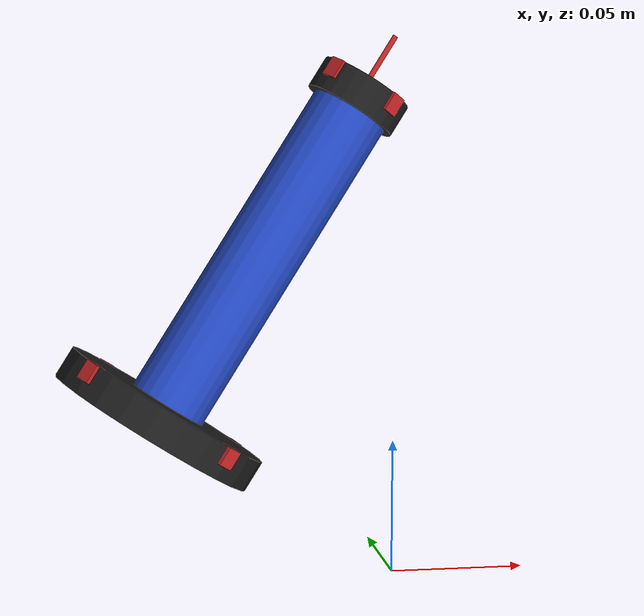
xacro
<?xml version="1.0" ?>
<robot xmlns:sensor="http://playerstage.sourceforge.net/gazebo/xmlschema/#sensor"
       xmlns:controller="http://playerstage.sourceforge.net/gazebo/xmlschema/#controller"
       xmlns:interface="http://playerstage.sourceforge.net/gazebo/xmlschema/#interface"
       xmlns:xacro="http://www.ros.org/wiki/xacro"
       name="gazebo_stylus_demo">

  <!-- instantiate the URDF model of our PhaseSpace "stylus" marker object. -->

  <xacro:include filename="$(find tams_phasespace)/urdf/phasespace_stylus.xacro" />

  <link name="world" />

  <xacro:phasespace_stylus  name="phasespace_stylus" />

  <joint name="stylus_fixed_joint" type="fixed">
    <parent link="world" />
    <child  link="phasespace_stylus" />
    <origin xyz="0 0 0.2" rpy="0.3 0.5 0.7" />
  </joint>

</robot>

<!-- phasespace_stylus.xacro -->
<robot
       xmlns:sensor="http://playerstage.sourceforge.net/gazebo/xmlschema/#sensor"
       xmlns:controller="http://playerstage.sourceforge.net/gazebo/xmlschema/#controller"
       xmlns:interface="http://playerstage.sourceforge.net/gazebo/xmlschema/#interface"
       xmlns:xacro="http://www.ros.org/wiki/xacro"
       name="phasespace_stylus">

  <xacro:include filename="$(find tams_apriltags)/urdf/materials.xacro" />

  <!--  The LEDs themselves are roughy (7.0, 6.0, 4.2)mm in size -->
  <xacro:macro name="phasespace_led" params="parent name *origin">
    <link name="${name}">
      <origin xyz="0 0 0" />
      <mass value="0.001" />
      <inertia  ixx="0.001" ixy="0" ixz="0" iyy="0.001" iyz="0" izz="0.001" />
      <visual>
        <material name="red" />
        <origin xyz="0 0 0" />
        <geometry>
          <box size="0.0042 0.006 0.007" />
        </geometry>
      </visual>
      <collision>
        <origin xyz="0 0 0" />
        <geometry>
          <box size="0.0042 0.006 0.007" />
        </geometry>
      </collision>
    </link>
    <gazebo reference="${name}">
      <material>Gazebo/RedGlow</material>
      <turnGravityOff>false</turnGravityOff>
      <selfCollide>false</selfCollide>
      <!-- kp: stiffness kd: damping mu1, mu2: friction -->
      <mu1>100.0</mu1>
      <mu2>100.0</mu2>
      <kp>1000000.0</kp>
      <kd>1.0</kd>
    </gazebo>
    <joint name="${name}_joint" type="fixed">
      <xacro:insert_block name="origin" />
      <parent link="${parent}"/>
      <child link="${name}"/>
    </joint>
  </xacro:macro>

  <xacro:macro name="default_inertia_mass_inertial" params="mass inertial">
    <inertial>
      <mass value="${mass}"/>
      <origin xyz="0 0 0" rpy="0 0 0" />
      <inertia ixx="${inertial}" ixy="0" ixz="0" iyy="${inertial}" iyz="0" izz="${inertial}"/>
    </inertial>
  </xacro:macro>

  <xacro:macro name="tams_cylinder" params="name radius length parent material gmaterial mass inertial *origin">
    <link name="${name}">
      <xacro:default_inertia_mass_inertial  mass="${mass}" inertial="${inertial}" />
      <visual>
        <origin xyz="0 0 0" rpy="0 0 0" />
        <geometry>
          <cylinder radius="${radius}" length="${length}" />
        </geometry>
        <material name="${material}" />
      </visual>
      <collision>
        <origin xyz="0 0 0" rpy="0 0 0" />
        <geometry>
          <cylinder radius="${radius}" length="${length}" />
        </geometry>
      </collision>
    </link>
    <gazebo reference="${name}">
      <turnGravityOff>false</turnGravityOff>
      <selfCollide>false</selfCollide>
      <material>${gmaterial}</material>
      <mu1>50.0</mu1>
      <mu2>50.0</mu2>
      <kp>1000000.0</kp>
      <kd>1.0</kd>
    </gazebo>
    <joint name="${name}_fixedjoint" type="fixed" >
     <parent link="${parent}" />
     <child  link="${name}" />
     <xacro:insert_block name="origin" />
   </joint>
  </xacro:macro>

  <xacro:macro name="phasespace_stylus" params="name" >
    <link name="${name}" />

    <!-- length=tip_height + front_led_ring_thickness  = 0.032m -->
    <xacro:tams_cylinder name="phasespace_stylus_tip" parent="${name}"
                         radius="0.001" length="0.02"
                         mass="0.01" inertial="0.01"
                         material="red" gmaterial="Gazebo/RedGlow" >
      <origin xyz="0 0 ${-0.02/2}" rpy="0 0 0" />
    </xacro:tams_cylinder>

    <xacro:tams_cylinder name="phasespace_stylus_grip" parent="${name}"
                         radius="${0.029/2}" length="0.125"
                         mass="0.2" inertial="0.01"
                         material="blue" gmaterial="Gazebo/Blue" >
      <origin xyz="0 0 ${-0.032-0.125/2}" rpy="0 0 0" />
    </xacro:tams_cylinder>

    <xacro:tams_cylinder name="phasespace_stylus_front_ring" parent="${name}"
                         radius="${0.035/2}" length="0.012"
                         mass="0.02" inertial="0.01"
                         material="black" gmaterial="Gazebo/Black" >
      <origin xyz="0 0 ${-0.02-0.012/2}" rpy="0 0 0" />
    </xacro:tams_cylinder>

    <xacro:tams_cylinder name="phasespace_stylus_rear_ring" parent="${name}"
                         radius="${0.08/2}" length="0.012"
                         mass="0.05" inertial="0.01"
                         material="black" gmaterial="Gazebo/Black" >
      <origin xyz="0 0 ${-0.02-0.012-0.125-0.012/2}" rpy="0 0 0" />
    </xacro:tams_cylinder>

    <!-- a cylinder used as the button on the grip -->
    <xacro:tams_cylinder name="phasespace_stylus_button" parent="${name}"
                         radius="${0.003}" length="0.01"
                         mass="0.02" inertial="0.01"
                         material="yellow" gmaterial="Gazebo/Yellow" >
      <origin xyz="${0.029/2} 0 ${-0.02-0.012-0.025}" rpy="0 0 0" />
    </xacro:tams_cylinder>

    <!-- front ring LEDs -->
    <!-- outer distance 1-3 = 2-4 = 36.48 mm -->
    <xacro:phasespace_led name="phasespace_stlyus_led1" parent="${name}" >
      <origin xyz="0.0162 0.0 ${-0.02-0.0034}" rpy="0 0 0"/>
    </xacro:phasespace_led>
    <xacro:phasespace_led name="phasespace_stlyus_led2" parent="${name}" >
      <origin xyz="0.0 0.0162 ${-0.02-0.0034}" rpy="0 0 1.571"/>
    </xacro:phasespace_led>
    <xacro:phasespace_led name="phasespace_stlyus_led3" parent="${name}" >
      <origin xyz="-0.0162 0.0 ${-0.02-0.0034}" rpy="0 0 3.1415"/>
    </xacro:phasespace_led>
    <xacro:phasespace_led name="phasespace_stlyus_led4" parent="${name}" >
      <origin xyz="0.0 -0.0162 ${-0.02-0.0034}" rpy="0 0 4.712"/>
    </xacro:phasespace_led>

    <!-- rear ring LEDs -->
    <!-- distance 5-7 = 81.9 6-8 = 82.39 -->
    <!-- translation: 0.082/2 - 0.0042/2 =  -->
    <xacro:phasespace_led name="phasespace_stlyus_led5" parent="${name}" >
      <origin xyz="0.039 0.0 ${-0.02-0.012-0.125-0.0034}" rpy="0 0 0"/>
    </xacro:phasespace_led>
    <xacro:phasespace_led name="phasespace_stlyus_led6" parent="${name}" >
      <origin xyz="0.0 0.039 ${-0.02-0.012-0.125-0.0034}" rpy="0 0 1.571" />
    </xacro:phasespace_led>
    <xacro:phasespace_led name="phasespace_stlyus_led7" parent="${name}" >
      <origin xyz="-0.039 0.0 ${-0.02-0.012-0.125-0.0034}" rpy="0 0 3.1415" />
    </xacro:phasespace_led>
    <xacro:phasespace_led name="phasespace_stlyus_led8" parent="${name}" >
      <origin xyz="-.0 -0.039 ${-0.02-0.012-0.125-0.0034}" rpy="0 0 4.712"/>
    </xacro:phasespace_led>

  </xacro:macro>

</robot>
